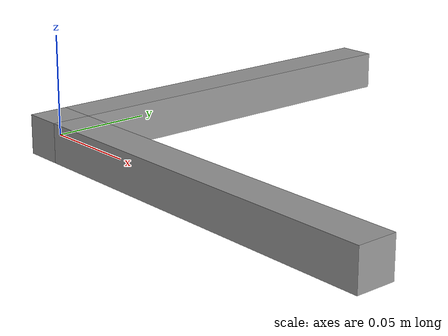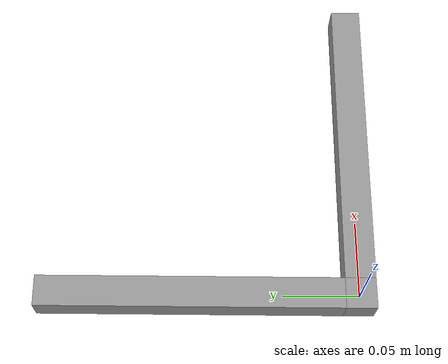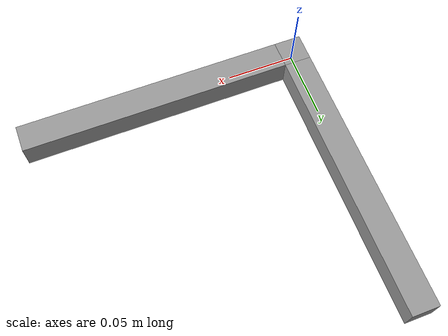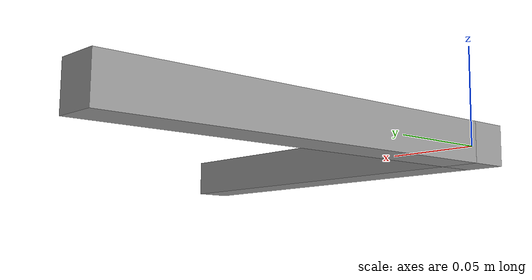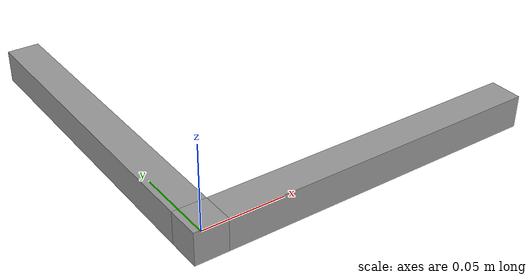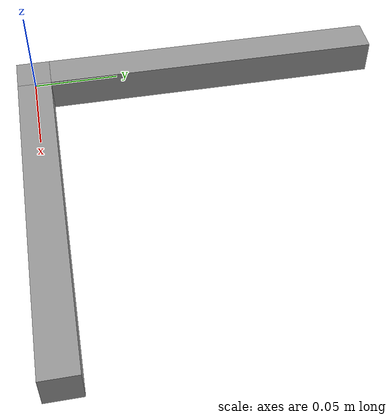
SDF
<?xml version="1.0" ?>

<sdf version="1.5">
  <model name="boxes_right_angle">
    <link name="link">
      <inertial>
        <pose>0.05238095238095238 0.05238095238095238 0.0  0 0 0</pose>
        <mass>0.1008</mass>
        <inertia>
          <ixx>0.0004693485714285714</ixx>
          <iyy>0.0004693485714285714</iyy>
          <izz>0.0009319771428571428</izz>
          <ixy>0.0002765714285714286</ixy>
          <ixz>0.0</ixz>
          <iyz>0.0</iyz>
        </inertia>
      </inertial>

      <collision name="boxOCollision">
        <pose>0 0 0  0 0 0</pose>
        <geometry>
          <box>
            <size>0.02 0.02 0.02</size>
          </box>
        </geometry>
      </collision>
      <visual name="boxOVisual">
        <pose>0 0 0  0 0 0</pose>
        <geometry>
          <box>
            <size>0.02 0.02 0.02</size>
          </box>
        </geometry>
        <material>
          <script>
            <uri>file://media/materials/scripts/gazebo.material</uri>
            <name>Gazebo/Grey</name>
          </script>
        </material>
      </visual>

      <collision name="boxXCollision">
        <pose>0.11 0 0  0 0 0</pose>
        <geometry>
          <box>
            <size>0.2 0.02 0.02</size>
          </box>
        </geometry>
      </collision>
      <visual name="boxXVisual">
        <pose>0.11 0 0  0 0 0</pose>
        <geometry>
          <box>
            <size>0.2 0.02 0.02</size>
          </box>
        </geometry>
        <material>
          <script>
            <uri>file://media/materials/scripts/gazebo.material</uri>
            <name>Gazebo/Grey</name>
          </script>
        </material>
      </visual>

      <collision name="boxYCollision">
        <pose>0 0.11 0  0 0 0</pose>
        <geometry>
          <box>
            <size>0.02 0.2 0.02</size>
          </box>
        </geometry>
      </collision>
      <visual name="boxYVisual">
        <pose>0 0.11 0  0 0 0</pose>
        <geometry>
          <box>
            <size>0.02 0.2 0.02</size>
          </box>
        </geometry>
        <material>
          <script>
            <uri>file://media/materials/scripts/gazebo.material</uri>
            <name>Gazebo/Grey</name>
          </script>
        </material>
      </visual>

    </link>
  </model>
</sdf>
